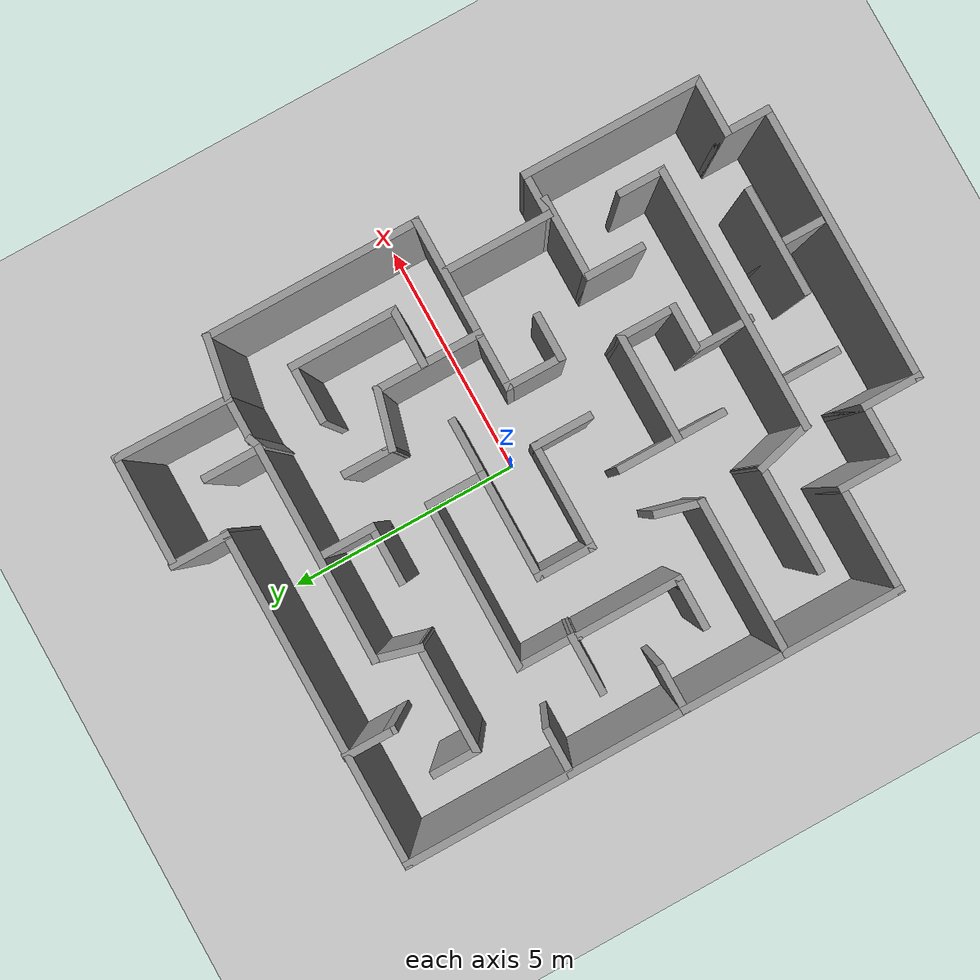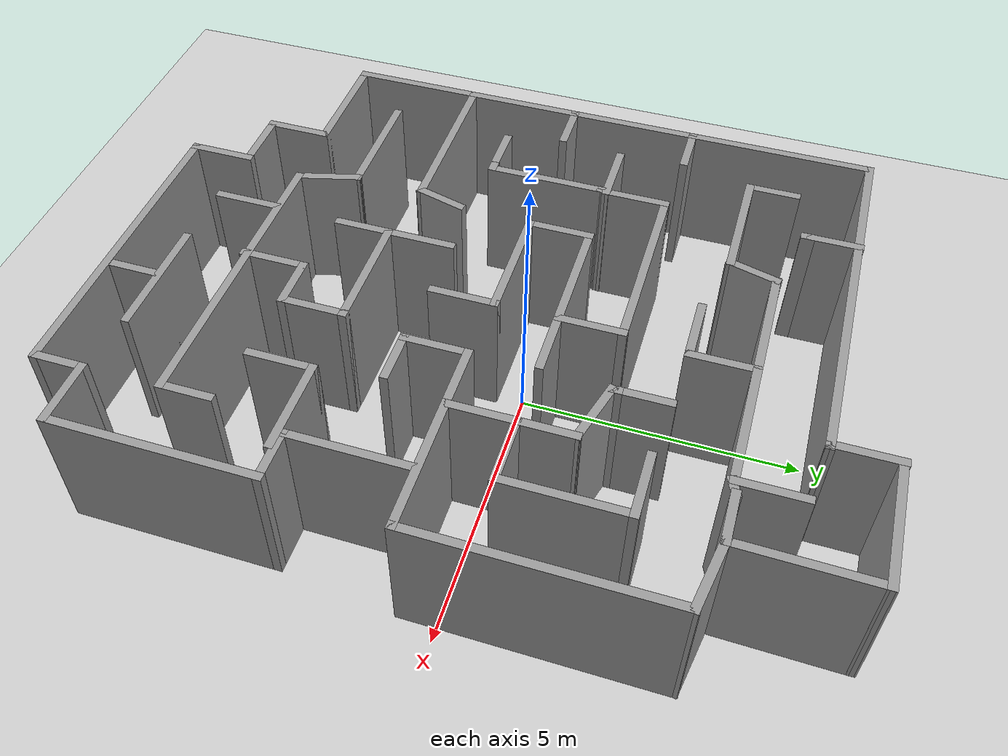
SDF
<sdf version="1.7">
 <world name="default">
  <light name="sun" type="directional">
   <pose>0 0 10 0 -0 0</pose>
   <diffuse>0.8 0.8 0.8 1</diffuse>
   <specular>0.2 0.2 0.2 1</specular>
   <attenuation>
    <range>1000</range>
    <constant>0.9</constant>
    <linear>0.01</linear>
    <quadratic>0.001</quadratic>
   </attenuation>
   <direction>-0.5 0.1 -0.9</direction>
   <spot><inner_angle>0</inner_angle><outer_angle>0</outer_angle><falloff>0</falloff></spot>
  </light>
  <model name="ground_plane">
   <static>1</static>
   <link name="link">
    <collision name="collision">
     <geometry><plane><normal>0 0 1</normal><size>100 100</size></plane></geometry>
     <surface>
      <contact><collide_bitmask>65535</collide_bitmask></contact>
      <friction><ode><mu>100</mu><mu2>50</mu2></ode></friction>
     </surface>
    </collision>
    <visual name="visual">
     <cast_shadows>0</cast_shadows>
     <geometry><plane><normal>0 0 1</normal><size>100 100</size></plane></geometry>
     <material>
      <script><uri>file://media/materials/scripts/gazebo.material</uri><name>Gazebo/Grey</name></script>
     </material>
    </visual>
   </link>
  </model>
  <gravity>0 0 -9.8</gravity>
  <magnetic_field>6e-06 2.3e-05 -4.2e-05</magnetic_field>
  <atmosphere type="adiabatic"/>
  <physics type="ode">
   <max_step_size>0.001</max_step_size>
   <real_time_factor>1</real_time_factor>
   <real_time_update_rate>1000</real_time_update_rate>
  </physics>
  <scene><ambient>0.4 0.4 0.4 1</ambient><background>0.7 0.7 0.7 1</background><shadows>1</shadows></scene>
  <spherical_coordinates>
   <surface_model>EARTH_WGS84</surface_model>
   <latitude_deg>0</latitude_deg>
   <longitude_deg>0</longitude_deg>
   <elevation>0</elevation>
   <heading_deg>0</heading_deg>
  </spherical_coordinates>
  <model name="3">
   <pose>-0.35975 -0.490034 0 0 -0 0</pose>
   <link name="Wall_10">
    <collision name="Wall_10_Collision">
     <geometry><box><size>1.25 0.15 2.5</size></box></geometry>
     <pose>0 0 1.25 0 -0 0</pose>
    </collision>
    <visual name="Wall_10_Visual">
     <pose>0 0 1.25 0 -0 0</pose>
     <geometry><box><size>1.25 0.15 2.5</size></box></geometry>
     <material>
      <script><uri>file://media/materials/scripts/gazebo.material</uri><name>Gazebo/Grey</name></script>
      <ambient>1 1 1 1</ambient>
     </material>
     <meta><layer>0</layer></meta>
    </visual>
    <pose>2.79303 4.92104 0 0 -0 1.5708</pose>
   </link>
   <link name="Wall_100">
    <collision name="Wall_100_Collision">
     <geometry><box><size>1.75 0.15 2.5</size></box></geometry>
     <pose>0 0 1.25 0 -0 0</pose>
    </collision>
    <visual name="Wall_100_Visual">
     <pose>0 0 1.25 0 -0 0</pose>
     <geometry><box><size>1.75 0.15 2.5</size></box></geometry>
     <material>
      <script><uri>file://media/materials/scripts/gazebo.material</uri><name>Gazebo/Grey</name></script>
      <ambient>1 1 1 1</ambient>
     </material>
     <meta><layer>0</layer></meta>
    </visual>
    <pose>3.45303 -2.38 0 0 -0 0</pose>
   </link>
   <link name="Wall_12">
    <collision name="Wall_12_Collision">
     <geometry><box><size>4.5 0.15 2.5</size></box></geometry>
     <pose>0 0 1.25 0 -0 0</pose>
    </collision>
    <visual name="Wall_12_Visual">
     <pose>0 0 1.25 0 -0 0</pose>
     <geometry><box><size>4.5 0.15 2.5</size></box></geometry>
     <material>
      <script><uri>file://media/materials/scripts/gazebo.material</uri><name>Gazebo/Grey</name></script>
      <ambient>1 1 1 1</ambient>
     </material>
     <meta><layer>0</layer></meta>
    </visual>
    <pose>0.61803 4.37104 0 0 -0 3.14159</pose>
   </link>
   <link name="Wall_14">
    <collision name="Wall_14_Collision">
     <geometry><box><size>1 0.15 2.5</size></box></geometry>
     <pose>0 0 1.25 0 -0 0</pose>
    </collision>
    <visual name="Wall_14_Visual">
     <pose>0 0 1.25 0 -0 0</pose>
     <geometry><box><size>1 0.15 2.5</size></box></geometry>
     <material>
      <script><uri>file://media/materials/scripts/gazebo.material</uri><name>Gazebo/Grey</name></script>
      <ambient>1 1 1 1</ambient>
     </material>
     <meta><layer>0</layer></meta>
    </visual>
    <pose>-2.83697 5.215 0 0 -0 -1.5708</pose>
   </link>
   <link name="Wall_15">
    <collision name="Wall_15_Collision">
     <geometry><box><size>0.25 0.15 2.5</size></box></geometry>
     <pose>0 0 1.25 0 -0 0</pose>
    </collision>
    <visual name="Wall_15_Visual">
     <pose>0 0 1.25 0 -0 0</pose>
     <geometry><box><size>0.25 0.15 2.5</size></box></geometry>
     <material>
      <script><uri>file://media/materials/scripts/gazebo.material</uri><name>Gazebo/Grey</name></script>
      <ambient>1 1 1 1</ambient>
     </material>
     <meta><layer>0</layer></meta>
    </visual>
    <pose>-2.83697 4.74 0 0 -0 -1.5708</pose>
   </link>
   <link name="Wall_17">
    <collision name="Wall_17_Collision">
     <geometry><box><size>3.5 0.15 2.5</size></box></geometry>
     <pose>0 0 1.25 0 -0 0</pose>
    </collision>
    <visual name="Wall_17_Visual">
     <pose>0 0 1.25 0 -0 0</pose>
     <geometry><box><size>3.5 0.15 2.5</size></box></geometry>
     <material>
      <script><uri>file://media/materials/scripts/gazebo.material</uri><name>Gazebo/Grey</name></script>
      <ambient>1 1 1 1</ambient>
     </material>
     <meta><layer>0</layer></meta>
    </visual>
    <pose>-5.05697 3.935 0 0 -0 -1.5708</pose>
   </link>
   <link name="Wall_18">
    <collision name="Wall_18_Collision">
     <geometry><box><size>1 0.15 2.5</size></box></geometry>
     <pose>0 0 1.25 0 -0 0</pose>
    </collision>
    <visual name="Wall_18_Visual">
     <pose>0 0 1.25 0 -0 0</pose>
     <geometry><box><size>1 0.15 2.5</size></box></geometry>
     <material>
      <script><uri>file://media/materials/scripts/gazebo.material</uri><name>Gazebo/Grey</name></script>
      <ambient>1 1 1 1</ambient>
     </material>
     <meta><layer>0</layer></meta>
    </visual>
    <pose>-4.63197 2.26 0 0 -0 0</pose>
   </link>
   <link name="Wall_2">
    <collision name="Wall_2_Collision">
     <geometry><box><size>6.93007 0.15 2.5</size></box></geometry>
     <pose>0 0 1.25 0 -0 0</pose>
    </collision>
    <visual name="Wall_2_Visual">
     <pose>0 0 1.25 0 -0 0</pose>
     <geometry><box><size>6.93007 0.15 2.5</size></box></geometry>
     <material>
      <script><uri>file://media/materials/scripts/gazebo.material</uri><name>Gazebo/Grey</name></script>
      <ambient>1 1 1 1</ambient>
     </material>
     <meta><layer>0</layer></meta>
    </visual>
    <pose>-1.66697 5.625 0 0 -0 0.004425</pose>
   </link>
   <link name="Wall_20">
    <collision name="Wall_20_Collision">
     <geometry><box><size>2.5 0.15 2.5</size></box></geometry>
     <pose>0 0 1.25 0 -0 0</pose>
    </collision>
    <visual name="Wall_20_Visual">
     <pose>0 0 1.25 0 -0 0</pose>
     <geometry><box><size>2.5 0.15 2.5</size></box></geometry>
     <material>
      <script><uri>file://media/materials/scripts/gazebo.material</uri><name>Gazebo/Grey</name></script>
      <ambient>1 1 1 1</ambient>
     </material>
     <meta><layer>0</layer></meta>
    </visual>
    <pose>-5.05697 1.085 0 0 -0 -1.5708</pose>
   </link>
   <link name="Wall_21">
    <collision name="Wall_21_Collision">
     <geometry><box><size>1 0.15 2.5</size></box></geometry>
     <pose>0 0 1.25 0 -0 0</pose>
    </collision>
    <visual name="Wall_21_Visual">
     <pose>0 0 1.25 0 -0 0</pose>
     <geometry><box><size>1 0.15 2.5</size></box></geometry>
     <material>
      <script><uri>file://media/materials/scripts/gazebo.material</uri><name>Gazebo/Grey</name></script>
      <ambient>1 1 1 1</ambient>
     </material>
     <meta><layer>0</layer></meta>
    </visual>
    <pose>-4.63197 -0.09 0 0 -0 0</pose>
   </link>
   <link name="Wall_23">
    <collision name="Wall_23_Collision">
     <geometry><box><size>2.25 0.15 2.5</size></box></geometry>
     <pose>0 0 1.25 0 -0 0</pose>
    </collision>
    <visual name="Wall_23_Visual">
     <pose>0 0 1.25 0 -0 0</pose>
     <geometry><box><size>2.25 0.15 2.5</size></box></geometry>
     <material>
      <script><uri>file://media/materials/scripts/gazebo.material</uri><name>Gazebo/Grey</name></script>
      <ambient>1 1 1 1</ambient>
     </material>
     <meta><layer>0</layer></meta>
    </visual>
    <pose>-5.05697 -1.14 0 0 -0 -1.5708</pose>
   </link>
   <link name="Wall_24">
    <collision name="Wall_24_Collision">
     <geometry><box><size>3.25 0.15 2.5</size></box></geometry>
     <pose>0 0 1.25 0 -0 0</pose>
    </collision>
    <visual name="Wall_24_Visual">
     <pose>0 0 1.25 0 -0 0</pose>
     <geometry><box><size>3.25 0.15 2.5</size></box></geometry>
     <material>
      <script><uri>file://media/materials/scripts/gazebo.material</uri><name>Gazebo/Grey</name></script>
      <ambient>1 1 1 1</ambient>
     </material>
     <meta><layer>0</layer></meta>
    </visual>
    <pose>-3.50697 -2.19 0 0 -0 0</pose>
   </link>
   <link name="Wall_25">
    <collision name="Wall_25_Collision">
     <geometry><box><size>1 0.15 2.5</size></box></geometry>
     <pose>0 0 1.25 0 -0 0</pose>
    </collision>
    <visual name="Wall_25_Visual">
     <pose>0 0 1.25 0 -0 0</pose>
     <geometry><box><size>1 0.15 2.5</size></box></geometry>
     <material>
      <script><uri>file://media/materials/scripts/gazebo.material</uri><name>Gazebo/Grey</name></script>
      <ambient>1 1 1 1</ambient>
     </material>
     <meta><layer>0</layer></meta>
    </visual>
    <pose>-1.84697 -1.77948 0 0 -0 1.309</pose>
   </link>
   <link name="Wall_27">
    <collision name="Wall_27_Collision">
     <geometry><box><size>1 0.15 2.5</size></box></geometry>
     <pose>0 0 1.25 0 -0 0</pose>
    </collision>
    <visual name="Wall_27_Visual">
     <pose>0 0 1.25 0 -0 0</pose>
     <geometry><box><size>1 0.15 2.5</size></box></geometry>
     <material>
      <script><uri>file://media/materials/scripts/gazebo.material</uri><name>Gazebo/Grey</name></script>
      <ambient>1 1 1 1</ambient>
     </material>
     <meta><layer>0</layer></meta>
    </visual>
    <pose>-3.49197 -1.14 0 0 -0 0</pose>
   </link>
   <link name="Wall_28">
    <collision name="Wall_28_Collision">
     <geometry><box><size>0.15 0.15 2.5</size></box></geometry>
     <pose>0 0 1.25 0 -0 0</pose>
    </collision>
    <visual name="Wall_28_Visual">
     <pose>0 0 1.25 0 -0 0</pose>
     <geometry><box><size>0.15 0.15 2.5</size></box></geometry>
     <material>
      <script><uri>file://media/materials/scripts/gazebo.material</uri><name>Gazebo/Grey</name></script>
      <ambient>1 1 1 1</ambient>
     </material>
     <meta><layer>0</layer></meta>
    </visual>
    <pose>-3.06697 -1.14 0 0 -0 0</pose>
   </link>
   <link name="Wall_29">
    <collision name="Wall_29_Collision">
     <geometry><box><size>0.25 0.15 2.5</size></box></geometry>
     <pose>0 0 1.25 0 -0 0</pose>
    </collision>
    <visual name="Wall_29_Visual">
     <pose>0 0 1.25 0 -0 0</pose>
     <geometry><box><size>0.25 0.15 2.5</size></box></geometry>
     <material>
      <script><uri>file://media/materials/scripts/gazebo.material</uri><name>Gazebo/Grey</name></script>
      <ambient>1 1 1 1</ambient>
     </material>
     <meta><layer>0</layer></meta>
    </visual>
    <pose>-3.01697 -1.14 0 0 -0 0</pose>
   </link>
   <link name="Wall_3">
    <collision name="Wall_3_Collision">
     <geometry><box><size>0.15 0.15 2.5</size></box></geometry>
     <pose>0 0 1.25 0 -0 0</pose>
    </collision>
    <visual name="Wall_3_Visual">
     <pose>0 0 1.25 0 -0 0</pose>
     <geometry><box><size>0.15 0.15 2.5</size></box></geometry>
     <material>
      <script><uri>file://media/materials/scripts/gazebo.material</uri><name>Gazebo/Grey</name></script>
      <ambient>1 1 1 1</ambient>
     </material>
     <meta><layer>0</layer></meta>
    </visual>
    <pose>1.72303 5.64 0 0 -0 0</pose>
   </link>
   <link name="Wall_30">
    <collision name="Wall_30_Collision">
     <geometry><box><size>2.25 0.15 2.5</size></box></geometry>
     <pose>0 0 1.25 0 -0 0</pose>
    </collision>
    <visual name="Wall_30_Visual">
     <pose>0 0 1.25 0 -0 0</pose>
     <geometry><box><size>2.25 0.15 2.5</size></box></geometry>
     <material>
      <script><uri>file://media/materials/scripts/gazebo.material</uri><name>Gazebo/Grey</name></script>
      <ambient>1 1 1 1</ambient>
     </material>
     <meta><layer>0</layer></meta>
    </visual>
    <pose>-2.96697 -0.09 0 0 -0 1.5708</pose>
   </link>
   <link name="Wall_31">
    <collision name="Wall_31_Collision">
     <geometry><box><size>0.25 0.15 2.5</size></box></geometry>
     <pose>0 0 1.25 0 -0 0</pose>
    </collision>
    <visual name="Wall_31_Visual">
     <pose>0 0 1.25 0 -0 0</pose>
     <geometry><box><size>0.25 0.15 2.5</size></box></geometry>
     <material>
      <script><uri>file://media/materials/scripts/gazebo.material</uri><name>Gazebo/Grey</name></script>
      <ambient>1 1 1 1</ambient>
     </material>
     <meta><layer>0</layer></meta>
    </visual>
    <pose>-2.95403 1.0083 0 0 -0 1.309</pose>
   </link>
   <link name="Wall_32">
    <collision name="Wall_32_Collision">
     <geometry><box><size>1.25 0.15 2.5</size></box></geometry>
     <pose>0 0 1.25 0 -0 0</pose>
    </collision>
    <visual name="Wall_32_Visual">
     <pose>0 0 1.25 0 -0 0</pose>
     <geometry><box><size>1.25 0.15 2.5</size></box></geometry>
     <material>
      <script><uri>file://media/materials/scripts/gazebo.material</uri><name>Gazebo/Grey</name></script>
      <ambient>1 1 1 1</ambient>
     </material>
     <meta><layer>0</layer></meta>
    </visual>
    <pose>-3.49108 1.05659 0 0 -0 3.14159</pose>
   </link>
   <link name="Wall_34">
    <collision name="Wall_34_Collision">
     <geometry><box><size>1.25 0.15 2.5</size></box></geometry>
     <pose>0 0 1.25 0 -0 0</pose>
    </collision>
    <visual name="Wall_34_Visual">
     <pose>0 0 1.25 0 -0 0</pose>
     <geometry><box><size>1.25 0.15 2.5</size></box></geometry>
     <material>
      <script><uri>file://media/materials/scripts/gazebo.material</uri><name>Gazebo/Grey</name></script>
      <ambient>1 1 1 1</ambient>
     </material>
     <meta><layer>0</layer></meta>
    </visual>
    <pose>-2.94108 1.60659 0 0 -0 1.5708</pose>
   </link>
   <link name="Wall_35">
    <collision name="Wall_35_Collision">
     <geometry><box><size>3.5 0.15 2.5</size></box></geometry>
     <pose>0 0 1.25 0 -0 0</pose>
    </collision>
    <visual name="Wall_35_Visual">
     <pose>0 0 1.25 0 -0 0</pose>
     <geometry><box><size>3.5 0.15 2.5</size></box></geometry>
     <material>
      <script><uri>file://media/materials/scripts/gazebo.material</uri><name>Gazebo/Grey</name></script>
      <ambient>1 1 1 1</ambient>
     </material>
     <meta><layer>0</layer></meta>
    </visual>
    <pose>-1.26608 2.15659 0 0 -0 0</pose>
   </link>
   <link name="Wall_36">
    <collision name="Wall_36_Collision">
     <geometry><box><size>1.25 0.15 2.5</size></box></geometry>
     <pose>0 0 1.25 0 -0 0</pose>
    </collision>
    <visual name="Wall_36_Visual">
     <pose>0 0 1.25 0 -0 0</pose>
     <geometry><box><size>1.25 0.15 2.5</size></box></geometry>
     <material>
      <script><uri>file://media/materials/scripts/gazebo.material</uri><name>Gazebo/Grey</name></script>
      <ambient>1 1 1 1</ambient>
     </material>
     <meta><layer>0</layer></meta>
    </visual>
    <pose>0.408916 1.60659 0 0 -0 -1.5708</pose>
   </link>
   <link name="Wall_37">
    <collision name="Wall_37_Collision">
     <geometry><box><size>1.25 0.15 2.5</size></box></geometry>
     <pose>0 0 1.25 0 -0 0</pose>
    </collision>
    <visual name="Wall_37_Visual">
     <pose>0 0 1.25 0 -0 0</pose>
     <geometry><box><size>1.25 0.15 2.5</size></box></geometry>
     <material>
      <script><uri>file://media/materials/scripts/gazebo.material</uri><name>Gazebo/Grey</name></script>
      <ambient>1 1 1 1</ambient>
     </material>
     <meta><layer>0</layer></meta>
    </visual>
    <pose>0.958916 1.05659 0 0 -0 0</pose>
   </link>
   <link name="Wall_39">
    <collision name="Wall_39_Collision">
     <geometry><box><size>2.25 0.15 2.5</size></box></geometry>
     <pose>0 0 1.25 0 -0 0</pose>
    </collision>
    <visual name="Wall_39_Visual">
     <pose>0 0 1.25 0 -0 0</pose>
     <geometry><box><size>2.25 0.15 2.5</size></box></geometry>
     <material>
      <script><uri>file://media/materials/scripts/gazebo.material</uri><name>Gazebo/Grey</name></script>
      <ambient>1 1 1 1</ambient>
     </material>
     <meta><layer>0</layer></meta>
    </visual>
    <pose>-0.641084 1.05659 0 0 -0 3.14159</pose>
   </link>
   <link name="Wall_4">
    <collision name="Wall_4_Collision">
     <geometry><box><size>1.25 0.15 2.5</size></box></geometry>
     <pose>0 0 1.25 0 -0 0</pose>
    </collision>
    <visual name="Wall_4_Visual">
     <pose>0 0 1.25 0 -0 0</pose>
     <geometry><box><size>1.25 0.15 2.5</size></box></geometry>
     <material>
      <script><uri>file://media/materials/scripts/gazebo.material</uri><name>Gazebo/Grey</name></script>
      <ambient>1 1 1 1</ambient>
     </material>
     <meta><layer>0</layer></meta>
    </visual>
    <pose>1.69303 6.19 0 0 -0 1.5708</pose>
   </link>
   <link name="Wall_40">
    <collision name="Wall_40_Collision">
     <geometry><box><size>1.25 0.15 2.5</size></box></geometry>
     <pose>0 0 1.25 0 -0 0</pose>
    </collision>
    <visual name="Wall_40_Visual">
     <pose>0 0 1.25 0 -0 0</pose>
     <geometry><box><size>1.25 0.15 2.5</size></box></geometry>
     <material>
      <script><uri>file://media/materials/scripts/gazebo.material</uri><name>Gazebo/Grey</name></script>
      <ambient>1 1 1 1</ambient>
     </material>
     <meta><layer>0</layer></meta>
    </visual>
    <pose>-1.69108 0.506593 0 0 -0 -1.5708</pose>
   </link>
   <link name="Wall_41">
    <collision name="Wall_41_Collision">
     <geometry><box><size>2.25 0.15 2.5</size></box></geometry>
     <pose>0 0 1.25 0 -0 0</pose>
    </collision>
    <visual name="Wall_41_Visual">
     <pose>0 0 1.25 0 -0 0</pose>
     <geometry><box><size>2.25 0.15 2.5</size></box></geometry>
     <material>
      <script><uri>file://media/materials/scripts/gazebo.material</uri><name>Gazebo/Grey</name></script>
      <ambient>1 1 1 1</ambient>
     </material>
     <meta><layer>0</layer></meta>
    </visual>
    <pose>-0.641084 -0.043407 0 0 -0 0</pose>
   </link>
   <link name="Wall_42">
    <collision name="Wall_42_Collision">
     <geometry><box><size>1.25 0.15 2.5</size></box></geometry>
     <pose>0 0 1.25 0 -0 0</pose>
    </collision>
    <visual name="Wall_42_Visual">
     <pose>0 0 1.25 0 -0 0</pose>
     <geometry><box><size>1.25 0.15 2.5</size></box></geometry>
     <material>
      <script><uri>file://media/materials/scripts/gazebo.material</uri><name>Gazebo/Grey</name></script>
      <ambient>1 1 1 1</ambient>
     </material>
     <meta><layer>0</layer></meta>
    </visual>
    <pose>0.408916 -0.593407 0 0 -0 -1.5708</pose>
   </link>
   <link name="Wall_44">
    <collision name="Wall_44_Collision">
     <geometry><box><size>1 0.15 2.5</size></box></geometry>
     <pose>0 0 1.25 0 -0 0</pose>
    </collision>
    <visual name="Wall_44_Visual">
     <pose>0 0 1.25 0 -0 0</pose>
     <geometry><box><size>1 0.15 2.5</size></box></geometry>
     <material>
      <script><uri>file://media/materials/scripts/gazebo.material</uri><name>Gazebo/Grey</name></script>
      <ambient>1 1 1 1</ambient>
     </material>
     <meta><layer>0</layer></meta>
    </visual>
    <pose>-1.66697 3.96052 0 0 -0 -1.8326</pose>
   </link>
   <link name="Wall_45">
    <collision name="Wall_45_Collision">
     <geometry><box><size>2.25 0.15 2.5</size></box></geometry>
     <pose>0 0 1.25 0 -0 0</pose>
    </collision>
    <visual name="Wall_45_Visual">
     <pose>0 0 1.25 0 -0 0</pose>
     <geometry><box><size>2.25 0.15 2.5</size></box></geometry>
     <material>
      <script><uri>file://media/materials/scripts/gazebo.material</uri><name>Gazebo/Grey</name></script>
      <ambient>1 1 1 1</ambient>
     </material>
     <meta><layer>0</layer></meta>
    </visual>
    <pose>-2.82697 3.55 0 0 -0 3.14159</pose>
   </link>
   <link name="Wall_46">
    <collision name="Wall_46_Collision">
     <geometry><box><size>1 0.15 2.5</size></box></geometry>
     <pose>0 0 1.25 0 -0 0</pose>
    </collision>
    <visual name="Wall_46_Visual">
     <pose>0 0 1.25 0 -0 0</pose>
     <geometry><box><size>1 0.15 2.5</size></box></geometry>
     <material>
      <script><uri>file://media/materials/scripts/gazebo.material</uri><name>Gazebo/Grey</name></script>
      <ambient>1 1 1 1</ambient>
     </material>
     <meta><layer>0</layer></meta>
    </visual>
    <pose>-3.87697 3.975 0 0 -0 1.5708</pose>
   </link>
   <link name="Wall_48">
    <collision name="Wall_48_Collision">
     <geometry><box><size>1.25 0.15 2.5</size></box></geometry>
     <pose>0 0 1.25 0 -0 0</pose>
    </collision>
    <visual name="Wall_48_Visual">
     <pose>0 0 1.25 0 -0 0</pose>
     <geometry><box><size>1.25 0.15 2.5</size></box></geometry>
     <material>
      <script><uri>file://media/materials/scripts/gazebo.material</uri><name>Gazebo/Grey</name></script>
      <ambient>1 1 1 1</ambient>
     </material>
     <meta><layer>0</layer></meta>
    </visual>
    <pose>-0.006966 3.27 0 0 -0 0</pose>
   </link>
   <link name="Wall_49">
    <collision name="Wall_49_Collision">
     <geometry><box><size>1.25 0.15 2.5</size></box></geometry>
     <pose>0 0 1.25 0 -0 0</pose>
    </collision>
    <visual name="Wall_49_Visual">
     <pose>0 0 1.25 0 -0 0</pose>
     <geometry><box><size>1.25 0.15 2.5</size></box></geometry>
     <material>
      <script><uri>file://media/materials/scripts/gazebo.material</uri><name>Gazebo/Grey</name></script>
      <ambient>1 1 1 1</ambient>
     </material>
     <meta><layer>0</layer></meta>
    </visual>
    <pose>0.543034 3.82 0 0 -0 1.5708</pose>
   </link>
   <link name="Wall_51">
    <collision name="Wall_51_Collision">
     <geometry><box><size>1 0.15 2.5</size></box></geometry>
     <pose>0 0 1.25 0 -0 0</pose>
    </collision>
    <visual name="Wall_51_Visual">
     <pose>0 0 1.25 0 -0 0</pose>
     <geometry><box><size>1 0.15 2.5</size></box></geometry>
     <material>
      <script><uri>file://media/materials/scripts/gazebo.material</uri><name>Gazebo/Grey</name></script>
      <ambient>1 1 1 1</ambient>
     </material>
     <meta><layer>0</layer></meta>
    </visual>
    <pose>1.63303 2.785 0 0 -0 -1.5708</pose>
   </link>
   <link name="Wall_52">
    <collision name="Wall_52_Collision">
     <geometry><box><size>0.25 0.15 2.5</size></box></geometry>
     <pose>0 0 1.25 0 -0 0</pose>
    </collision>
    <visual name="Wall_52_Visual">
     <pose>0 0 1.25 0 -0 0</pose>
     <geometry><box><size>0.25 0.15 2.5</size></box></geometry>
     <material>
      <script><uri>file://media/materials/scripts/gazebo.material</uri><name>Gazebo/Grey</name></script>
      <ambient>1 1 1 1</ambient>
     </material>
     <meta><layer>0</layer></meta>
    </visual>
    <pose>1.63303 2.31 0 0 -0 -1.5708</pose>
   </link>
   <link name="Wall_53">
    <collision name="Wall_53_Collision">
     <geometry><box><size>1.25 0.15 2.5</size></box></geometry>
     <pose>0 0 1.25 0 -0 0</pose>
    </collision>
    <visual name="Wall_53_Visual">
     <pose>0 0 1.25 0 -0 0</pose>
     <geometry><box><size>1.25 0.15 2.5</size></box></geometry>
     <material>
      <script><uri>file://media/materials/scripts/gazebo.material</uri><name>Gazebo/Grey</name></script>
      <ambient>1 1 1 1</ambient>
     </material>
     <meta><layer>0</layer></meta>
    </visual>
    <pose>2.16429 2.11765 0 0 -0 -0.261799</pose>
   </link>
   <link name="Wall_54">
    <collision name="Wall_54_Collision">
     <geometry><box><size>2.25 0.15 2.5</size></box></geometry>
     <pose>0 0 1.25 0 -0 0</pose>
    </collision>
    <visual name="Wall_54_Visual">
     <pose>0 0 1.25 0 -0 0</pose>
     <geometry><box><size>2.25 0.15 2.5</size></box></geometry>
     <material>
      <script><uri>file://media/materials/scripts/gazebo.material</uri><name>Gazebo/Grey</name></script>
      <ambient>1 1 1 1</ambient>
     </material>
     <meta><layer>0</layer></meta>
    </visual>
    <pose>2.69555 0.925299 0 0 -0 -1.5708</pose>
   </link>
   <link name="Wall_55">
    <collision name="Wall_55_Collision">
     <geometry><box><size>2.5 0.15 2.5</size></box></geometry>
     <pose>0 0 1.25 0 -0 0</pose>
    </collision>
    <visual name="Wall_55_Visual">
     <pose>0 0 1.25 0 -0 0</pose>
     <geometry><box><size>2.5 0.15 2.5</size></box></geometry>
     <material>
      <script><uri>file://media/materials/scripts/gazebo.material</uri><name>Gazebo/Grey</name></script>
      <ambient>1 1 1 1</ambient>
     </material>
     <meta><layer>0</layer></meta>
    </visual>
    <pose>3.87055 -0.124701 0 0 -0 0</pose>
   </link>
   <link name="Wall_58">
    <collision name="Wall_58_Collision">
     <geometry><box><size>4.5 0.15 2.5</size></box></geometry>
     <pose>0 0 1.25 0 -0 0</pose>
    </collision>
    <visual name="Wall_58_Visual">
     <pose>0 0 1.25 0 -0 0</pose>
     <geometry><box><size>4.5 0.15 2.5</size></box></geometry>
     <material>
      <script><uri>file://media/materials/scripts/gazebo.material</uri><name>Gazebo/Grey</name></script>
      <ambient>1 1 1 1</ambient>
     </material>
     <meta><layer>0</layer></meta>
    </visual>
    <pose>5.04555 2.0503 0 0 -0 1.5708</pose>
   </link>
   <link name="Wall_59">
    <collision name="Wall_59_Collision">
     <geometry><box><size>1.35029 0.15 2.5</size></box></geometry>
     <pose>0 0 1.25 0 -0 0</pose>
    </collision>
    <visual name="Wall_59_Visual">
     <pose>0 0 1.25 0 -0 0</pose>
     <geometry><box><size>1.35029 0.15 2.5</size></box></geometry>
     <material>
      <script><uri>file://media/materials/scripts/gazebo.material</uri><name>Gazebo/Grey</name></script>
      <ambient>1 1 1 1</ambient>
     </material>
     <meta><layer>0</layer></meta>
    </visual>
    <pose>4.45429 4.32817 0 0 -0 2.96934</pose>
   </link>
   <link name="Wall_6">
    <collision name="Wall_6_Collision">
     <geometry><box><size>2.25 0.15 2.5</size></box></geometry>
     <pose>0 0 1.25 0 -0 0</pose>
    </collision>
    <visual name="Wall_6_Visual">
     <pose>0 0 1.25 0 -0 0</pose>
     <geometry><box><size>2.25 0.15 2.5</size></box></geometry>
     <material>
      <script><uri>file://media/materials/scripts/gazebo.material</uri><name>Gazebo/Grey</name></script>
      <ambient>1 1 1 1</ambient>
     </material>
     <meta><layer>0</layer></meta>
    </visual>
    <pose>2.84303 6.72104 0 0 -0 0</pose>
   </link>
   <link name="Wall_61">
    <collision name="Wall_61_Collision">
     <geometry><box><size>1.25 0.15 2.5</size></box></geometry>
     <pose>0 0 1.25 0 -0 0</pose>
    </collision>
    <visual name="Wall_61_Visual">
     <pose>0 0 1.25 0 -0 0</pose>
     <geometry><box><size>1.25 0.15 2.5</size></box></geometry>
     <material>
      <script><uri>file://media/materials/scripts/gazebo.material</uri><name>Gazebo/Grey</name></script>
      <ambient>1 1 1 1</ambient>
     </material>
     <meta><layer>0</layer></meta>
    </visual>
    <pose>3.26303 1.02 0 0 -0 0</pose>
   </link>
   <link name="Wall_62">
    <collision name="Wall_62_Collision">
     <geometry><box><size>2.25 0.15 2.5</size></box></geometry>
     <pose>0 0 1.25 0 -0 0</pose>
    </collision>
    <visual name="Wall_62_Visual">
     <pose>0 0 1.25 0 -0 0</pose>
     <geometry><box><size>2.25 0.15 2.5</size></box></geometry>
     <material>
      <script><uri>file://media/materials/scripts/gazebo.material</uri><name>Gazebo/Grey</name></script>
      <ambient>1 1 1 1</ambient>
     </material>
     <meta><layer>0</layer></meta>
    </visual>
    <pose>3.81303 2.07 0 0 -0 1.5708</pose>
   </link>
   <link name="Wall_63">
    <collision name="Wall_63_Collision">
     <geometry><box><size>1.25 0.15 2.5</size></box></geometry>
     <pose>0 0 1.25 0 -0 0</pose>
    </collision>
    <visual name="Wall_63_Visual">
     <pose>0 0 1.25 0 -0 0</pose>
     <geometry><box><size>1.25 0.15 2.5</size></box></geometry>
     <material>
      <script><uri>file://media/materials/scripts/gazebo.material</uri><name>Gazebo/Grey</name></script>
      <ambient>1 1 1 1</ambient>
     </material>
     <meta><layer>0</layer></meta>
    </visual>
    <pose>3.26303 3.12 0 0 -0 3.14159</pose>
   </link>
   <link name="Wall_65">
    <collision name="Wall_65_Collision">
     <geometry><box><size>2.5 0.15 2.5</size></box></geometry>
     <pose>0 0 1.25 0 -0 0</pose>
    </collision>
    <visual name="Wall_65_Visual">
     <pose>0 0 1.25 0 -0 0</pose>
     <geometry><box><size>2.5 0.15 2.5</size></box></geometry>
     <material>
      <script><uri>file://media/materials/scripts/gazebo.material</uri><name>Gazebo/Grey</name></script>
      <ambient>1 1 1 1</ambient>
     </material>
     <meta><layer>0</layer></meta>
    </visual>
    <pose>-5.05697 -3.365 0 0 -0 -1.5708</pose>
   </link>
   <link name="Wall_66">
    <collision name="Wall_66_Collision">
     <geometry><box><size>2.25 0.15 2.5</size></box></geometry>
     <pose>0 0 1.25 0 -0 0</pose>
    </collision>
    <visual name="Wall_66_Visual">
     <pose>0 0 1.25 0 -0 0</pose>
     <geometry><box><size>2.25 0.15 2.5</size></box></geometry>
     <material>
      <script><uri>file://media/materials/scripts/gazebo.material</uri><name>Gazebo/Grey</name></script>
      <ambient>1 1 1 1</ambient>
     </material>
     <meta><layer>0</layer></meta>
    </visual>
    <pose>-4.00697 -4.54 0 0 -0 0</pose>
   </link>
   <link name="Wall_67">
    <collision name="Wall_67_Collision">
     <geometry><box><size>1.25 0.15 2.5</size></box></geometry>
     <pose>0 0 1.25 0 -0 0</pose>
    </collision>
    <visual name="Wall_67_Visual">
     <pose>0 0 1.25 0 -0 0</pose>
     <geometry><box><size>1.25 0.15 2.5</size></box></geometry>
     <material>
      <script><uri>file://media/materials/scripts/gazebo.material</uri><name>Gazebo/Grey</name></script>
      <ambient>1 1 1 1</ambient>
     </material>
     <meta><layer>0</layer></meta>
    </visual>
    <pose>-2.95697 -5.09 0 0 -0 -1.5708</pose>
   </link>
   <link name="Wall_68">
    <collision name="Wall_68_Collision">
     <geometry><box><size>1.25 0.15 2.5</size></box></geometry>
     <pose>0 0 1.25 0 -0 0</pose>
    </collision>
    <visual name="Wall_68_Visual">
     <pose>0 0 1.25 0 -0 0</pose>
     <geometry><box><size>1.25 0.15 2.5</size></box></geometry>
     <material>
      <script><uri>file://media/materials/scripts/gazebo.material</uri><name>Gazebo/Grey</name></script>
      <ambient>1 1 1 1</ambient>
     </material>
     <meta><layer>0</layer></meta>
    </visual>
    <pose>-2.40697 -5.64 0 0 -0 0</pose>
   </link>
   <link name="Wall_69">
    <collision name="Wall_69_Collision">
     <geometry><box><size>1.25 0.15 2.5</size></box></geometry>
     <pose>0 0 1.25 0 -0 0</pose>
    </collision>
    <visual name="Wall_69_Visual">
     <pose>0 0 1.25 0 -0 0</pose>
     <geometry><box><size>1.25 0.15 2.5</size></box></geometry>
     <material>
      <script><uri>file://media/materials/scripts/gazebo.material</uri><name>Gazebo/Grey</name></script>
      <ambient>1 1 1 1</ambient>
     </material>
     <meta><layer>0</layer></meta>
    </visual>
    <pose>-1.85697 -6.19 0 0 -0 -1.5708</pose>
   </link>
   <link name="Wall_7">
    <collision name="Wall_7_Collision">
     <geometry><box><size>2.4102 0.15 2.5</size></box></geometry>
     <pose>0 0 1.25 0 -0 0</pose>
    </collision>
    <visual name="Wall_7_Visual">
     <pose>0 0 1.25 0 -0 0</pose>
     <geometry><box><size>2.4102 0.15 2.5</size></box></geometry>
     <material>
      <script><uri>file://media/materials/scripts/gazebo.material</uri><name>Gazebo/Grey</name></script>
      <ambient>1 1 1 1</ambient>
     </material>
     <meta><layer>0</layer></meta>
    </visual>
    <pose>3.87803 5.56104 0 0 -0 -1.58407</pose>
   </link>
   <link name="Wall_70">
    <collision name="Wall_70_Collision">
     <geometry><box><size>5.75 0.15 2.5</size></box></geometry>
     <pose>0 0 1.25 0 -0 0</pose>
    </collision>
    <visual name="Wall_70_Visual">
     <pose>0 0 1.25 0 -0 0</pose>
     <geometry><box><size>5.75 0.15 2.5</size></box></geometry>
     <material>
      <script><uri>file://media/materials/scripts/gazebo.material</uri><name>Gazebo/Grey</name></script>
      <ambient>1 1 1 1</ambient>
     </material>
     <meta><layer>0</layer></meta>
    </visual>
    <pose>0.943034 -6.74 0 0 -0 0</pose>
   </link>
   <link name="Wall_71">
    <collision name="Wall_71_Collision">
     <geometry><box><size>1 0.15 2.5</size></box></geometry>
     <pose>0 0 1.25 0 -0 0</pose>
    </collision>
    <visual name="Wall_71_Visual">
     <pose>0 0 1.25 0 -0 0</pose>
     <geometry><box><size>1 0.15 2.5</size></box></geometry>
     <material>
      <script><uri>file://media/materials/scripts/gazebo.material</uri><name>Gazebo/Grey</name></script>
      <ambient>1 1 1 1</ambient>
     </material>
     <meta><layer>0</layer></meta>
    </visual>
    <pose>3.74303 -6.315 0 0 -0 1.5708</pose>
   </link>
   <link name="Wall_72">
    <collision name="Wall_72_Collision">
     <geometry><box><size>1.25 0.15 2.5</size></box></geometry>
     <pose>0 0 1.25 0 -0 0</pose>
    </collision>
    <visual name="Wall_72_Visual">
     <pose>0 0 1.25 0 -0 0</pose>
     <geometry><box><size>1.25 0.15 2.5</size></box></geometry>
     <material>
      <script><uri>file://media/materials/scripts/gazebo.material</uri><name>Gazebo/Grey</name></script>
      <ambient>1 1 1 1</ambient>
     </material>
     <meta><layer>0</layer></meta>
    </visual>
    <pose>4.29303 -5.89 0 0 -0 0</pose>
   </link>
   <link name="Wall_73">
    <collision name="Wall_73_Collision">
     <geometry><box><size>3.75 0.15 2.5</size></box></geometry>
     <pose>0 0 1.25 0 -0 0</pose>
    </collision>
    <visual name="Wall_73_Visual">
     <pose>0 0 1.25 0 -0 0</pose>
     <geometry><box><size>3.75 0.15 2.5</size></box></geometry>
     <material>
      <script><uri>file://media/materials/scripts/gazebo.material</uri><name>Gazebo/Grey</name></script>
      <ambient>1 1 1 1</ambient>
     </material>
     <meta><layer>0</layer></meta>
    </visual>
    <pose>4.84303 -4.09 0 0 -0 1.5708</pose>
   </link>
   <link name="Wall_74">
    <collision name="Wall_74_Collision">
     <geometry><box><size>1 0.15 2.5</size></box></geometry>
     <pose>0 0 1.25 0 -0 0</pose>
    </collision>
    <visual name="Wall_74_Visual">
     <pose>0 0 1.25 0 -0 0</pose>
     <geometry><box><size>1 0.15 2.5</size></box></geometry>
     <material>
      <script><uri>file://media/materials/scripts/gazebo.material</uri><name>Gazebo/Grey</name></script>
      <ambient>1 1 1 1</ambient>
     </material>
     <meta><layer>0</layer></meta>
    </visual>
    <pose>4.41803 -2.29 0 0 -0 3.14159</pose>
   </link>
   <link name="Wall_75">
    <collision name="Wall_75_Collision">
     <geometry><box><size>2.25 0.15 2.5</size></box></geometry>
     <pose>0 0 1.25 0 -0 0</pose>
    </collision>
    <visual name="Wall_75_Visual">
     <pose>0 0 1.25 0 -0 0</pose>
     <geometry><box><size>2.25 0.15 2.5</size></box></geometry>
     <material>
      <script><uri>file://media/materials/scripts/gazebo.material</uri><name>Gazebo/Grey</name></script>
      <ambient>1 1 1 1</ambient>
     </material>
     <meta><layer>0</layer></meta>
    </visual>
    <pose>3.99303 -1.24 0 0 -0 1.5708</pose>
   </link>
   <link name="Wall_77">
    <collision name="Wall_77_Collision">
     <geometry><box><size>1.25 0.15 2.5</size></box></geometry>
     <pose>0 0 1.25 0 -0 0</pose>
    </collision>
    <visual name="Wall_77_Visual">
     <pose>0 0 1.25 0 -0 0</pose>
     <geometry><box><size>1.25 0.15 2.5</size></box></geometry>
     <material>
      <script><uri>file://media/materials/scripts/gazebo.material</uri><name>Gazebo/Grey</name></script>
      <ambient>1 1 1 1</ambient>
     </material>
     <meta><layer>0</layer></meta>
    </visual>
    <pose>2.14555 -0.124701 0 0 -0 3.14159</pose>
   </link>
   <link name="Wall_78">
    <collision name="Wall_78_Collision">
     <geometry><box><size>1.25 0.15 2.5</size></box></geometry>
     <pose>0 0 1.25 0 -0 0</pose>
    </collision>
    <visual name="Wall_78_Visual">
     <pose>0 0 1.25 0 -0 0</pose>
     <geometry><box><size>1.25 0.15 2.5</size></box></geometry>
     <material>
      <script><uri>file://media/materials/scripts/gazebo.material</uri><name>Gazebo/Grey</name></script>
      <ambient>1 1 1 1</ambient>
     </material>
     <meta><layer>0</layer></meta>
    </visual>
    <pose>1.59555 -0.674701 0 0 -0 -1.5708</pose>
   </link>
   <link name="Wall_79">
    <collision name="Wall_79_Collision">
     <geometry><box><size>1 0.15 2.5</size></box></geometry>
     <pose>0 0 1.25 0 -0 0</pose>
    </collision>
    <visual name="Wall_79_Visual">
     <pose>0 0 1.25 0 -0 0</pose>
     <geometry><box><size>1 0.15 2.5</size></box></geometry>
     <material>
      <script><uri>file://media/materials/scripts/gazebo.material</uri><name>Gazebo/Grey</name></script>
      <ambient>1 1 1 1</ambient>
     </material>
     <meta><layer>0</layer></meta>
    </visual>
    <pose>2.02055 -1.2247 0 0 -0 0</pose>
   </link>
   <link name="Wall_8">
    <collision name="Wall_8_Collision">
     <geometry><box><size>1 0.15 2.5</size></box></geometry>
     <pose>0 0 1.25 0 -0 0</pose>
    </collision>
    <visual name="Wall_8_Visual">
     <pose>0 0 1.25 0 -0 0</pose>
     <geometry><box><size>1 0.15 2.5</size></box></geometry>
     <material>
      <script><uri>file://media/materials/scripts/gazebo.material</uri><name>Gazebo/Grey</name></script>
      <ambient>1 1 1 1</ambient>
     </material>
     <meta><layer>0</layer></meta>
    </visual>
    <pose>3.43803 4.43104 0 0 -0 3.14159</pose>
   </link>
   <link name="Wall_81">
    <collision name="Wall_81_Collision">
     <geometry><box><size>2.25 0.15 2.5</size></box></geometry>
     <pose>0 0 1.25 0 -0 0</pose>
    </collision>
    <visual name="Wall_81_Visual">
     <pose>0 0 1.25 0 -0 0</pose>
     <geometry><box><size>2.25 0.15 2.5</size></box></geometry>
     <material>
      <script><uri>file://media/materials/scripts/gazebo.material</uri><name>Gazebo/Grey</name></script>
      <ambient>1 1 1 1</ambient>
     </material>
     <meta><layer>0</layer></meta>
    </visual>
    <pose>-0.706966 -2.25 0 0 -0 -1.5708</pose>
   </link>
   <link name="Wall_83">
    <collision name="Wall_83_Collision">
     <geometry><box><size>2.25 0.15 2.5</size></box></geometry>
     <pose>0 0 1.25 0 -0 0</pose>
    </collision>
    <visual name="Wall_83_Visual">
     <pose>0 0 1.25 0 -0 0</pose>
     <geometry><box><size>2.25 0.15 2.5</size></box></geometry>
     <material>
      <script><uri>file://media/materials/scripts/gazebo.material</uri><name>Gazebo/Grey</name></script>
      <ambient>1 1 1 1</ambient>
     </material>
     <meta><layer>0</layer></meta>
    </visual>
    <pose>-2.98697 -3.45 0 0 -0 0</pose>
   </link>
   <link name="Wall_84">
    <collision name="Wall_84_Collision">
     <geometry><box><size>1.25 0.15 2.5</size></box></geometry>
     <pose>0 0 1.25 0 -0 0</pose>
    </collision>
    <visual name="Wall_84_Visual">
     <pose>0 0 1.25 0 -0 0</pose>
     <geometry><box><size>1.25 0.15 2.5</size></box></geometry>
     <material>
      <script><uri>file://media/materials/scripts/gazebo.material</uri><name>Gazebo/Grey</name></script>
      <ambient>1 1 1 1</ambient>
     </material>
     <meta><layer>0</layer></meta>
    </visual>
    <pose>-1.79462 -3.98126 0 0 -0 -1.309</pose>
   </link>
   <link name="Wall_85">
    <collision name="Wall_85_Collision">
     <geometry><box><size>5.5 0.15 2.5</size></box></geometry>
     <pose>0 0 1.25 0 -0 0</pose>
    </collision>
    <visual name="Wall_85_Visual">
     <pose>0 0 1.25 0 -0 0</pose>
     <geometry><box><size>5.5 0.15 2.5</size></box></geometry>
     <material>
      <script><uri>file://media/materials/scripts/gazebo.material</uri><name>Gazebo/Grey</name></script>
      <ambient>1 1 1 1</ambient>
     </material>
     <meta><layer>0</layer></meta>
    </visual>
    <pose>1.02273 -4.51252 0 0 -0 0</pose>
   </link>
   <link name="Wall_86">
    <collision name="Wall_86_Collision">
     <geometry><box><size>1 0.15 2.5</size></box></geometry>
     <pose>0 0 1.25 0 -0 0</pose>
    </collision>
    <visual name="Wall_86_Visual">
     <pose>0 0 1.25 0 -0 0</pose>
     <geometry><box><size>1 0.15 2.5</size></box></geometry>
     <material>
      <script><uri>file://media/materials/scripts/gazebo.material</uri><name>Gazebo/Grey</name></script>
      <ambient>1 1 1 1</ambient>
     </material>
     <meta><layer>0</layer></meta>
    </visual>
    <pose>3.69774 -4.08752 0 0 -0 1.5708</pose>
   </link>
   <link name="Wall_88">
    <collision name="Wall_88_Collision">
     <geometry><box><size>1.25 0.15 2.5</size></box></geometry>
     <pose>0 0 1.25 0 -0 0</pose>
    </collision>
    <visual name="Wall_88_Visual">
     <pose>0 0 1.25 0 -0 0</pose>
     <geometry><box><size>1.25 0.15 2.5</size></box></geometry>
     <material>
      <script><uri>file://media/materials/scripts/gazebo.material</uri><name>Gazebo/Grey</name></script>
      <ambient>1 1 1 1</ambient>
     </material>
     <meta><layer>0</layer></meta>
    </visual>
    <pose>-0.736966 -5.11 0 0 -0 -1.5708</pose>
   </link>
   <link name="Wall_9">
    <collision name="Wall_9_Collision">
     <geometry><box><size>0.387697 0.15 2.5</size></box></geometry>
     <pose>0 0 1.25 0 -0 0</pose>
    </collision>
    <visual name="Wall_9_Visual">
     <pose>0 0 1.25 0 -0 0</pose>
     <geometry><box><size>0.387697 0.15 2.5</size></box></geometry>
     <material>
      <script><uri>file://media/materials/scripts/gazebo.material</uri><name>Gazebo/Grey</name></script>
      <ambient>1 1 1 1</ambient>
     </material>
     <meta><layer>0</layer></meta>
    </visual>
    <pose>2.90303 4.38604 0 0 -0 -2.75327</pose>
   </link>
   <link name="Wall_90">
    <collision name="Wall_90_Collision">
     <geometry><box><size>2.25 0.15 2.5</size></box></geometry>
     <pose>0 0 1.25 0 -0 0</pose>
    </collision>
    <visual name="Wall_90_Visual">
     <pose>0 0 1.25 0 -0 0</pose>
     <geometry><box><size>2.25 0.15 2.5</size></box></geometry>
     <material>
      <script><uri>file://media/materials/scripts/gazebo.material</uri><name>Gazebo/Grey</name></script>
      <ambient>1 1 1 1</ambient>
     </material>
     <meta><layer>0</layer></meta>
    </visual>
    <pose>1.54303 -5.73 0 0 -0 0</pose>
   </link>
   <link name="Wall_92">
    <collision name="Wall_92_Collision">
     <geometry><box><size>1 0.15 2.5</size></box></geometry>
     <pose>0 0 1.25 0 -0 0</pose>
    </collision>
    <visual name="Wall_92_Visual">
     <pose>0 0 1.25 0 -0 0</pose>
     <geometry><box><size>1 0.15 2.5</size></box></geometry>
     <material>
      <script><uri>file://media/materials/scripts/gazebo.material</uri><name>Gazebo/Grey</name></script>
      <ambient>1 1 1 1</ambient>
     </material>
     <meta><layer>0</layer></meta>
    </visual>
    <pose>1.48303 -6.155 0 0 -0 -1.5708</pose>
   </link>
   <link name="Wall_94">
    <collision name="Wall_94_Collision">
     <geometry><box><size>2.25 0.15 2.5</size></box></geometry>
     <pose>0 0 1.25 0 -0 0</pose>
    </collision>
    <visual name="Wall_94_Visual">
     <pose>0 0 1.25 0 -0 0</pose>
     <geometry><box><size>2.25 0.15 2.5</size></box></geometry>
     <material>
      <script><uri>file://media/materials/scripts/gazebo.material</uri><name>Gazebo/Grey</name></script>
      <ambient>1 1 1 1</ambient>
     </material>
     <meta><layer>0</layer></meta>
    </visual>
    <pose>0.343034 -2.37 0 0 -0 0</pose>
   </link>
   <link name="Wall_95">
    <collision name="Wall_95_Collision">
     <geometry><box><size>1.25 0.15 2.5</size></box></geometry>
     <pose>0 0 1.25 0 -0 0</pose>
    </collision>
    <visual name="Wall_95_Visual">
     <pose>0 0 1.25 0 -0 0</pose>
     <geometry><box><size>1.25 0.15 2.5</size></box></geometry>
     <material>
      <script><uri>file://media/materials/scripts/gazebo.material</uri><name>Gazebo/Grey</name></script>
      <ambient>1 1 1 1</ambient>
     </material>
     <meta><layer>0</layer></meta>
    </visual>
    <pose>1.39303 -2.92 0 0 -0 -1.5708</pose>
   </link>
   <link name="Wall_96">
    <collision name="Wall_96_Collision">
     <geometry><box><size>1 0.15 2.5</size></box></geometry>
     <pose>0 0 1.25 0 -0 0</pose>
    </collision>
    <visual name="Wall_96_Visual">
     <pose>0 0 1.25 0 -0 0</pose>
     <geometry><box><size>1 0.15 2.5</size></box></geometry>
     <material>
      <script><uri>file://media/materials/scripts/gazebo.material</uri><name>Gazebo/Grey</name></script>
      <ambient>1 1 1 1</ambient>
     </material>
     <meta><layer>0</layer></meta>
    </visual>
    <pose>0.968034 -3.47 0 0 -0 3.14159</pose>
   </link>
   <link name="Wall_97">
    <collision name="Wall_97_Collision">
     <geometry><box><size>1.25 0.15 2.5</size></box></geometry>
     <pose>0 0 1.25 0 -0 0</pose>
    </collision>
    <visual name="Wall_97_Visual">
     <pose>0 0 1.25 0 -0 0</pose>
     <geometry><box><size>1.25 0.15 2.5</size></box></geometry>
     <material>
      <script><uri>file://media/materials/scripts/gazebo.material</uri><name>Gazebo/Grey</name></script>
      <ambient>1 1 1 1</ambient>
     </material>
     <meta><layer>0</layer></meta>
    </visual>
    <pose>0.543034 -4.02 0 0 -0 -1.5708</pose>
   </link>
   <link name="Wall_99">
    <collision name="Wall_99_Collision">
     <geometry><box><size>1.25 0.15 2.5</size></box></geometry>
     <pose>0 0 1.25 0 -0 0</pose>
    </collision>
    <visual name="Wall_99_Visual">
     <pose>0 0 1.25 0 -0 0</pose>
     <geometry><box><size>1.25 0.15 2.5</size></box></geometry>
     <material>
      <script><uri>file://media/materials/scripts/gazebo.material</uri><name>Gazebo/Grey</name></script>
      <ambient>1 1 1 1</ambient>
     </material>
     <meta><layer>0</layer></meta>
    </visual>
    <pose>2.65303 -2.93 0 0 -0 1.5708</pose>
   </link>
   <static>1</static>
  </model>
 </world>
</sdf>
